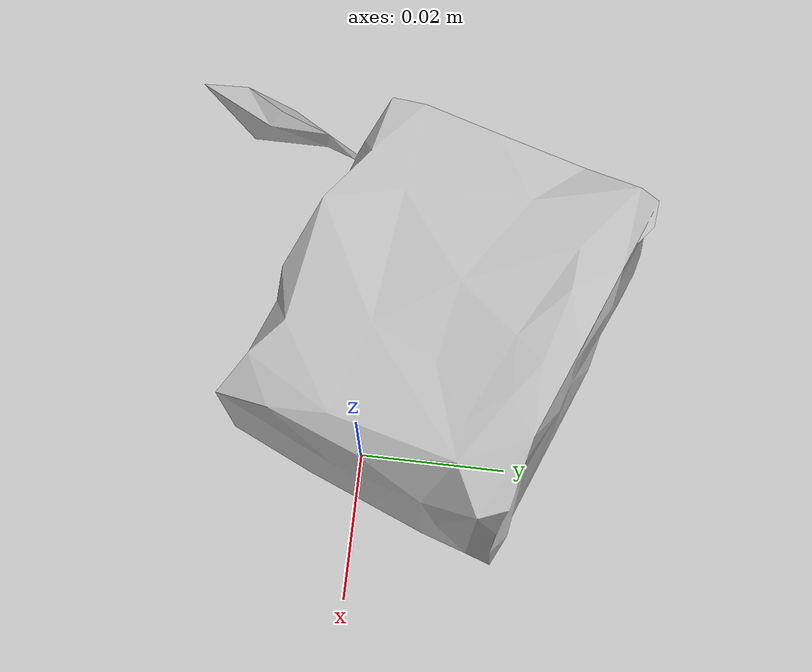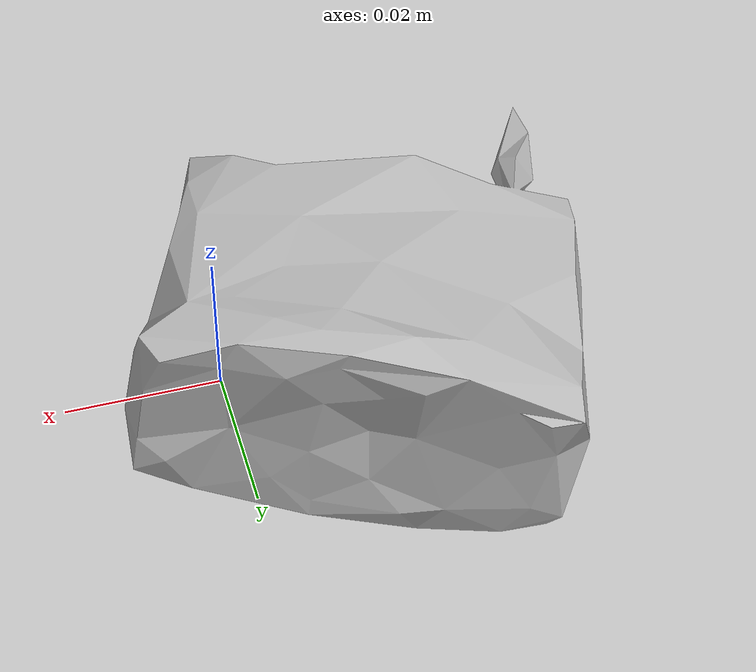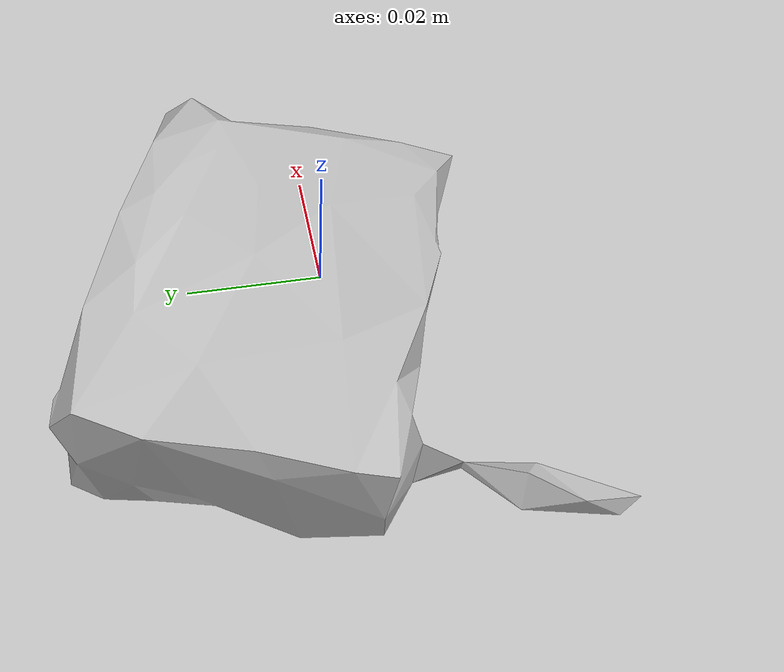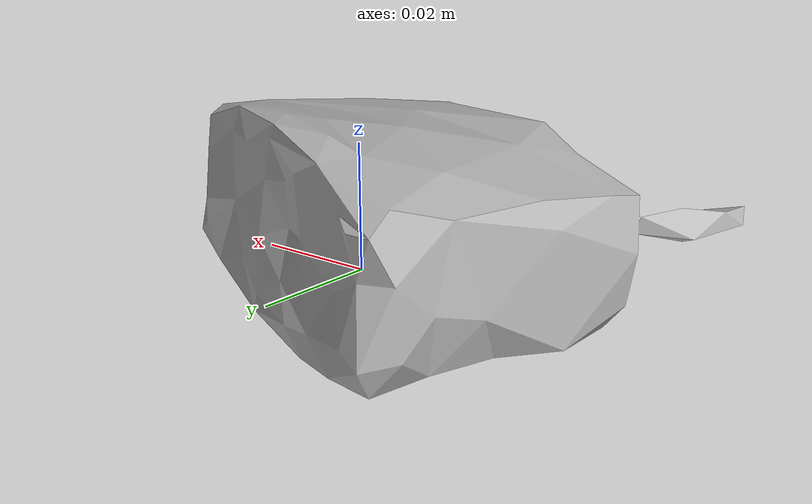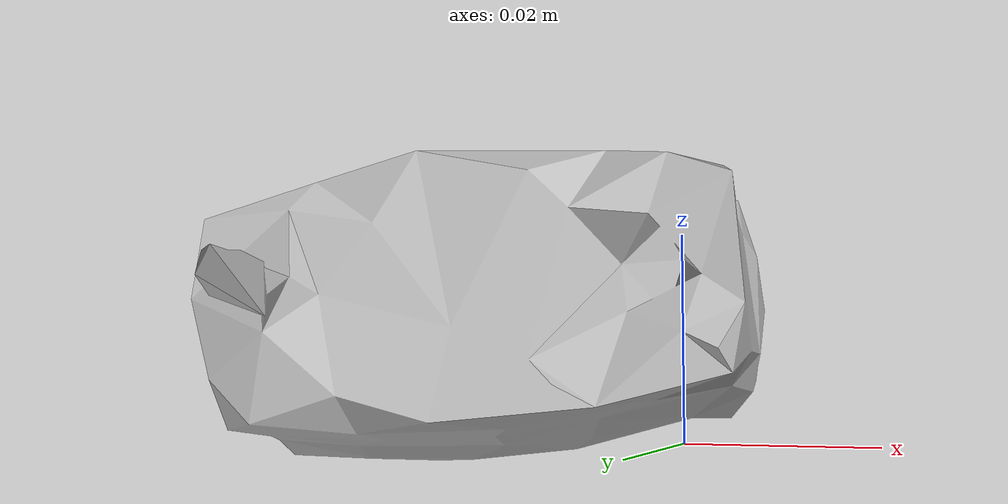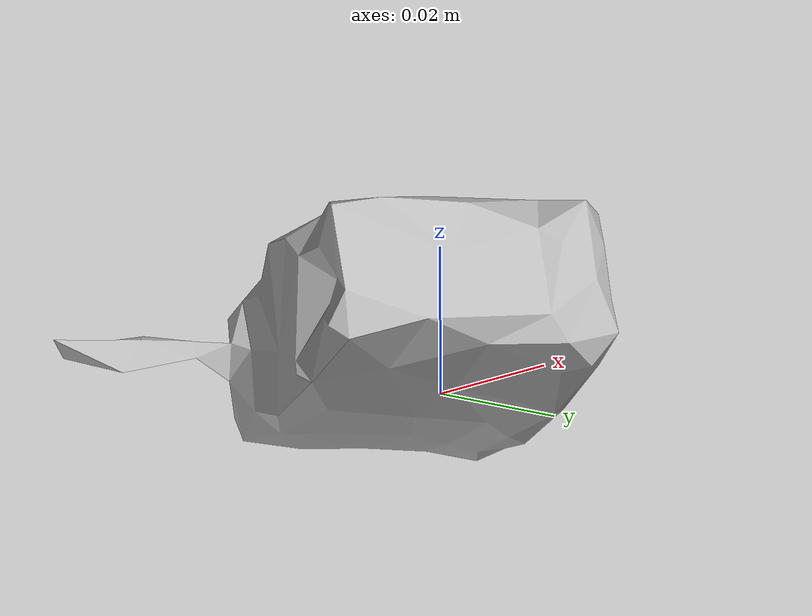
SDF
<?xml version='1.0'?>
<sdf version="1.4">
  <model name="038_padlock">
    <static>false</static>
    <link name="link">
      <inertial>
        <pose>-0.01905967108940058 0.005557251915537089 0.013349696405974 0.8364650784966955 -1.4726561636282611 3.066749333029551</pose>
        <mass>0.006292381731508567</mass>
        <inertia>
          <ixx>2.719094046947672e-06</ixx>
          <ixy>1.9524430098051522e-22</ixy>
          <ixz>-4.0271059424928856e-23</ixz>
          <iyy>1.8730369356004379e-06</iyy>
          <iyz>-2.94816516170067e-22</iyz>
          <izz>1.4438139639570604e-06</izz>
        </inertia>
      </inertial>
      <collision name="collision">
        <geometry>
          <mesh>
            <!-- Use a downsampled mesh for collisions -->
            <uri>model:///038_padlock/038_padlock_250_collision.stl</uri>
	        </mesh>
        </geometry>
        <surface>
      </surface>
      </collision>
      <visual name="visual">
        <geometry>
          <mesh>
            <uri>model:///038_padlock/textured.obj</uri>
	        </mesh>
        </geometry>
        <material>
          <script>
            <uri>model:///038_padlock/038_padlock.material</uri>
            <name>038_padlock</name>
          </script>
        </material>
      </visual>
    </link>
  </model>
</sdf>
